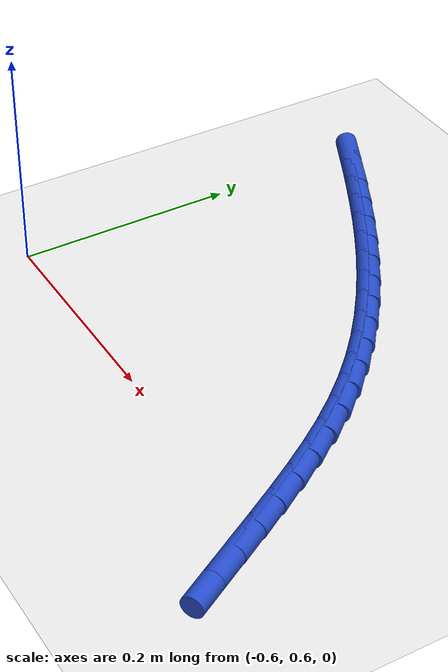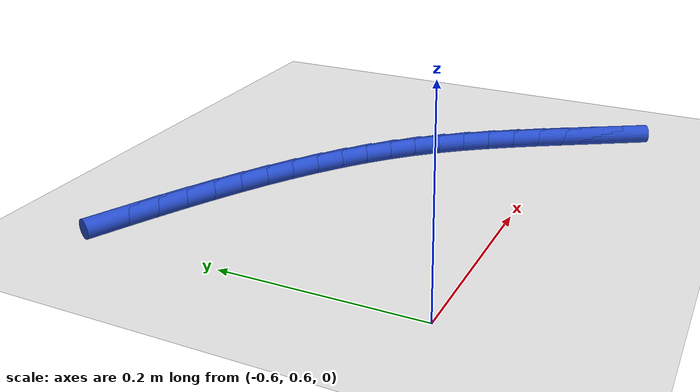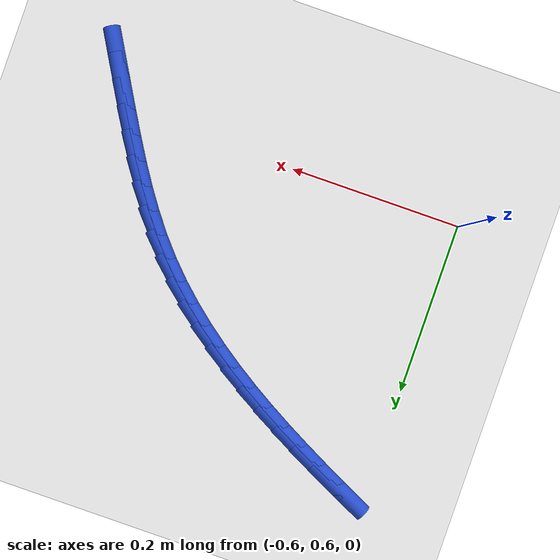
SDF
<sdf version="1.6">
 <world name="default">
  <model name="ground_plane">
   <static>1</static>
   <link name="link">
    <collision name="collision">
     <geometry><plane><normal>0 0 1</normal><size>100 100</size></plane></geometry>
     <surface><friction><ode><mu>100</mu><mu2>50</mu2></ode></friction></surface>
    </collision>
    <visual name="visual">
     <cast_shadows>0</cast_shadows>
     <geometry><plane><normal>0 0 1</normal><size>100 100</size></plane></geometry>
     <material>
      <script><uri>file://media/materials/scripts/gazebo.material</uri><name>Gazebo/WhiteGlow</name></script>
     </material>
    </visual>
   </link>
  </model>
  <model name="line">
   <link name="link_20">
    <pose>-0.17241453903655168 0.5509571085108506 0.01 0 1.57 -1.051888246477109</pose>
    <collision name="collision">
     <geometry><cylinder><radius>0.01</radius><length>0.08</length></cylinder></geometry>
    </collision>
    <visual name="visual">
     <material>
      <script><name>Gazebo/Blue</name><uri>file://media/materials/scripts/gazebo.material</uri></script>
     </material>
     <geometry><cylinder><radius>0.01</radius><length>0.08</length></cylinder></geometry>
    </visual>
   </link>
   <link name="link_21">
    <pose>-0.18710472720954635 0.5766791493343209 0.01 0 1.57 -1.0512040113902683</pose>
    <collision name="collision">
     <geometry><cylinder><radius>0.01</radius><length>0.08</length></cylinder></geometry>
    </collision>
    <visual name="visual">
     <material>
      <script><name>Gazebo/Blue</name><uri>file://media/materials/scripts/gazebo.material</uri></script>
     </material>
     <geometry><cylinder><radius>0.01</radius><length>0.08</length></cylinder></geometry>
    </visual>
   </link>
   <link name="link_22">
    <pose>-0.20181157151103613 0.602389488678617 0.01 0 1.57 -1.0427449161024778</pose>
    <collision name="collision">
     <geometry><cylinder><radius>0.01</radius><length>0.08</length></cylinder></geometry>
    </collision>
    <visual name="visual">
     <material>
      <script><name>Gazebo/Blue</name><uri>file://media/materials/scripts/gazebo.material</uri></script>
     </material>
     <geometry><cylinder><radius>0.01</radius><length>0.08</length></cylinder></geometry>
    </visual>
   </link>
   <link name="link_23">
    <pose>-0.21670400383865696 0.6279207240683891 0.01 0 1.57 -1.0252946663096587</pose>
    <collision name="collision">
     <geometry><cylinder><radius>0.01</radius><length>0.08</length></cylinder></geometry>
    </collision>
    <visual name="visual">
     <material>
      <script><name>Gazebo/Blue</name><uri>file://media/materials/scripts/gazebo.material</uri></script>
     </material>
     <geometry><cylinder><radius>0.01</radius><length>0.08</length></cylinder></geometry>
    </visual>
   </link>
   <link name="link_24">
    <pose>-0.23197723167758644 0.6530853293791075 0.01 0 1.57 -0.9986476846632024</pose>
    <collision name="collision">
     <geometry><cylinder><radius>0.01</radius><length>0.08</length></cylinder></geometry>
    </collision>
    <visual name="visual">
     <material>
      <script><name>Gazebo/Blue</name><uri>file://media/materials/scripts/gazebo.material</uri></script>
     </material>
     <geometry><cylinder><radius>0.01</radius><length>0.08</length></cylinder></geometry>
    </visual>
   </link>
   <link name="link_25">
    <pose>-0.24782646251300203 0.677695778486243 0.01 0 1.57 -0.9625404371289182</pose>
    <collision name="collision">
     <geometry><cylinder><radius>0.01</radius><length>0.08</length></cylinder></geometry>
    </collision>
    <visual name="visual">
     <material>
      <script><name>Gazebo/Blue</name><uri>file://media/materials/scripts/gazebo.material</uri></script>
     </material>
     <geometry><cylinder><radius>0.01</radius><length>0.08</length></cylinder></geometry>
    </visual>
   </link>
   <link name="link_26">
    <pose>-0.26444690383008135 0.7015645452652665 0.01 0 1.57 -0.9167173207357576</pose>
    <collision name="collision">
     <geometry><cylinder><radius>0.01</radius><length>0.08</length></cylinder></geometry>
    </collision>
    <visual name="visual">
     <material>
      <script><name>Gazebo/Blue</name><uri>file://media/materials/scripts/gazebo.material</uri></script>
     </material>
     <geometry><cylinder><radius>0.01</radius><length>0.08</length></cylinder></geometry>
    </visual>
   </link>
   <link name="link_27">
    <pose>-0.2820337631140019 0.7245041035916483 0.01 0 1.57 -0.8611853308796491</pose>
    <collision name="collision">
     <geometry><cylinder><radius>0.01</radius><length>0.08</length></cylinder></geometry>
    </collision>
    <visual name="visual">
     <material>
      <script><name>Gazebo/Blue</name><uri>file://media/materials/scripts/gazebo.material</uri></script>
     </material>
     <geometry><cylinder><radius>0.01</radius><length>0.08</length></cylinder></geometry>
    </visual>
   </link>
   <link name="link_28">
    <pose>-0.3007789875294239 0.7463299986361427 0.01 0 1.57 -0.8018477974935236</pose>
    <collision name="collision">
     <geometry><cylinder><radius>0.01</radius><length>0.08</length></cylinder></geometry>
    </collision>
    <visual name="visual">
     <material>
      <script><name>Gazebo/Blue</name><uri>file://media/materials/scripts/gazebo.material</uri></script>
     </material>
     <geometry><cylinder><radius>0.01</radius><length>0.08</length></cylinder></geometry>
    </visual>
   </link>
   <link name="link_29">
    <pose>-0.32075303088894985 0.7669722250407089 0.01 0 1.57 -0.7464528965106183</pose>
    <collision name="collision">
     <geometry><cylinder><radius>0.01</radius><length>0.08</length></cylinder></geometry>
    </collision>
    <visual name="visual">
     <material>
      <script><name>Gazebo/Blue</name><uri>file://media/materials/scripts/gazebo.material</uri></script>
     </material>
     <geometry><cylinder><radius>0.01</radius><length>0.08</length></cylinder></geometry>
    </visual>
   </link>
   <link name="link_30">
    <pose>-0.3418714955043365 0.786506651045218 0.01 0 1.57 -0.6957562835783553</pose>
    <collision name="collision">
     <geometry><cylinder><radius>0.01</radius><length>0.08</length></cylinder></geometry>
    </collision>
    <visual name="visual">
     <material>
      <script><name>Gazebo/Blue</name><uri>file://media/materials/scripts/gazebo.material</uri></script>
     </material>
     <geometry><cylinder><radius>0.01</radius><length>0.08</length></cylinder></geometry>
    </visual>
   </link>
   <link name="link_31">
    <pose>-0.3640399283989551 0.8050186171974407 0.01 0 1.57 -0.6498881633122606</pose>
    <collision name="collision">
     <geometry><cylinder><radius>0.01</radius><length>0.08</length></cylinder></geometry>
    </collision>
    <visual name="visual">
     <material>
      <script><name>Gazebo/Blue</name><uri>file://media/materials/scripts/gazebo.material</uri></script>
     </material>
     <geometry><cylinder><radius>0.01</radius><length>0.08</length></cylinder></geometry>
    </visual>
   </link>
   <link name="link_32">
    <pose>-0.3871638765961772 0.8225934640451474 0.01 0 1.57 -0.6088644613753241</pose>
    <collision name="collision">
     <geometry><cylinder><radius>0.01</radius><length>0.08</length></cylinder></geometry>
    </collision>
    <visual name="visual">
     <material>
      <script><name>Gazebo/Blue</name><uri>file://media/materials/scripts/gazebo.material</uri></script>
     </material>
     <geometry><cylinder><radius>0.01</radius><length>0.08</length></cylinder></geometry>
    </visual>
   </link>
   <link name="link_33">
    <pose>-0.4111488871193742 0.8393165321361098 0.01 0 1.57 -0.5726192543472648</pose>
    <collision name="collision">
     <geometry><cylinder><radius>0.01</radius><length>0.08</length></cylinder></geometry>
    </collision>
    <visual name="visual">
     <material>
      <script><name>Gazebo/Blue</name><uri>file://media/materials/scripts/gazebo.material</uri></script>
     </material>
     <geometry><cylinder><radius>0.01</radius><length>0.08</length></cylinder></geometry>
    </visual>
   </link>
   <link name="link_34">
    <pose>-0.4359005069919173 0.8552731620180979 0.01 0 1.57 -0.5410343319276107</pose>
    <collision name="collision">
     <geometry><cylinder><radius>0.01</radius><length>0.08</length></cylinder></geometry>
    </collision>
    <visual name="visual">
     <material>
      <script><name>Gazebo/Blue</name><uri>file://media/materials/scripts/gazebo.material</uri></script>
     </material>
     <geometry><cylinder><radius>0.01</radius><length>0.08</length></cylinder></geometry>
    </visual>
   </link>
   <link name="link_35">
    <pose>-0.4613242832371782 0.8705486942388833 0.01 0 1.57 -0.5139640245349182</pose>
    <collision name="collision">
     <geometry><cylinder><radius>0.01</radius><length>0.08</length></cylinder></geometry>
    </collision>
    <visual name="visual">
     <material>
      <script><name>Gazebo/Blue</name><uri>file://media/materials/scripts/gazebo.material</uri></script>
     </material>
     <geometry><cylinder><radius>0.01</radius><length>0.08</length></cylinder></geometry>
    </visual>
   </link>
   <link name="link_36">
    <pose>-0.4873257628785281 0.8852284693462363 0.01 0 1.57 -0.49125482677589577</pose>
    <collision name="collision">
     <geometry><cylinder><radius>0.01</radius><length>0.08</length></cylinder></geometry>
    </collision>
    <visual name="visual">
     <material>
      <script><name>Gazebo/Blue</name><uri>file://media/materials/scripts/gazebo.material</uri></script>
     </material>
     <geometry><cylinder><radius>0.01</radius><length>0.08</length></cylinder></geometry>
    </visual>
   </link>
   <link name="link_37">
    <pose>-0.5138104929393388 0.8993978278879287 0.01 0 1.57 -0.47276019355298965</pose>
    <collision name="collision">
     <geometry><cylinder><radius>0.01</radius><length>0.08</length></cylinder></geometry>
    </collision>
    <visual name="visual">
     <material>
      <script><name>Gazebo/Blue</name><uri>file://media/materials/scripts/gazebo.material</uri></script>
     </material>
     <geometry><cylinder><radius>0.01</radius><length>0.08</length></cylinder></geometry>
    </visual>
   </link>
   <link name="link_38">
    <pose>-0.540684020442981 0.9131421104117302 0.01 0 1.57 -0.4583430941588678</pose>
    <collision name="collision">
     <geometry><cylinder><radius>0.01</radius><length>0.08</length></cylinder></geometry>
    </collision>
    <visual name="visual">
     <material>
      <script><name>Gazebo/Blue</name><uri>file://media/materials/scripts/gazebo.material</uri></script>
     </material>
     <geometry><cylinder><radius>0.01</radius><length>0.08</length></cylinder></geometry>
    </visual>
   </link>
   <link name="link_39">
    <pose>-0.5678519825734893 0.9265464252400162 0.01 0 1.57 -0.44590105547631476</pose>
    <collision name="collision">
     <geometry><cylinder><radius>0.01</radius><length>0.08</length></cylinder></geometry>
    </collision>
    <visual name="visual">
     <material>
      <script><name>Gazebo/Blue</name><uri>file://media/materials/scripts/gazebo.material</uri></script>
     </material>
     <geometry><cylinder><radius>0.01</radius><length>0.08</length></cylinder></geometry>
    </visual>
   </link>
  </model>
 </world>
</sdf>
